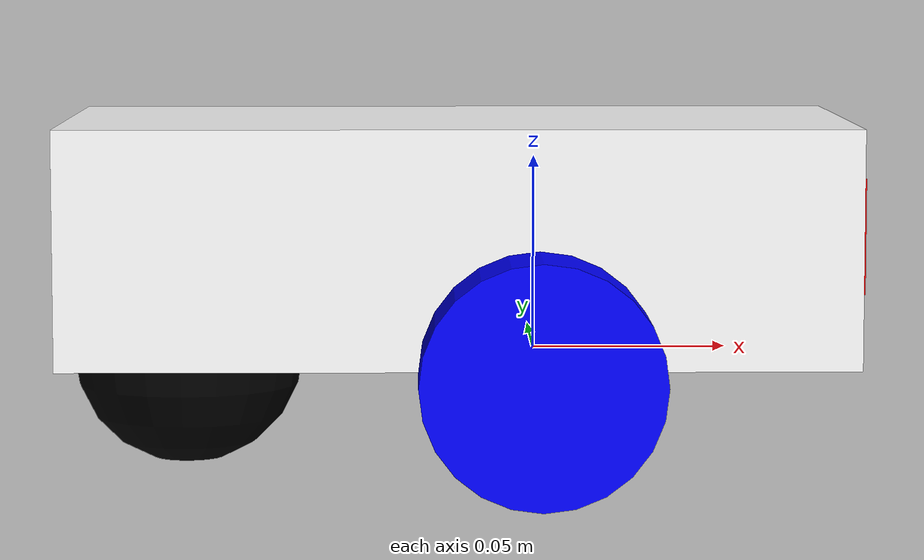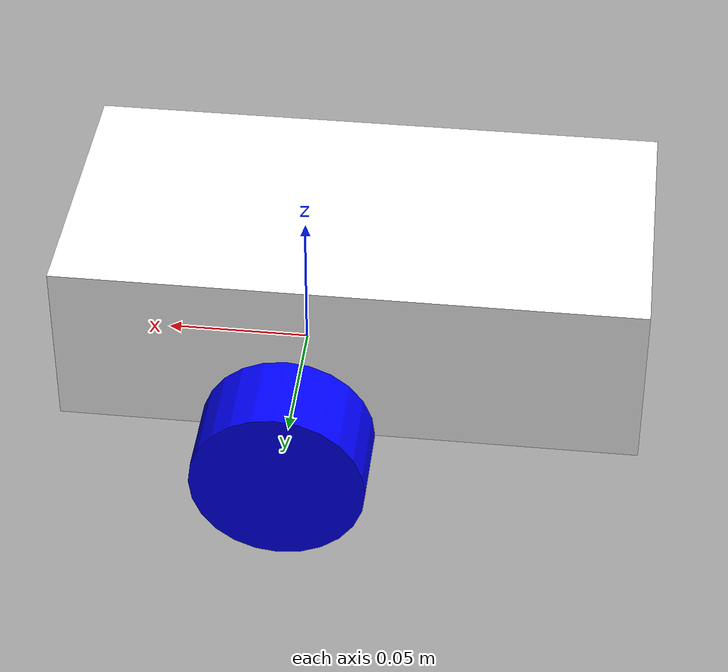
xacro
<?xml version="1.0"?>
<robot xmlns:xacro="http://www.ros.org/wiki/xacro" name="urdf_tutorial">

    <!-- COLOR -->
    <material name="white">
        <color rgba="1 1 1 1" />
    </material>

    <material name="blue">
        <color rgba="0 0 1 1" />
    </material>

    <material name="black">
        <color rgba="0 0 0 1" />
    </material>

    <material name="red">
        <color rgba="1 0 0 1" />
    </material>

    <!-- BASE LINK -->
    <link name="base_link">
        <origin xyz="0 0 2" />
        <inertial>
            <mass value="1.0" />
            <inertia ixx="0.01" ixy="0.0" ixz="0.0" iyy="0.01" iyz="0.0" izz="0.01" />
        </inertial>
    </link>

    <!-- BODY LINK -->
    <joint name="body_joint" type="fixed">
        <parent link="base_link" />
        <child link="body" />
        <origin xyz="-0.12 0 0" />
    </joint>

    <link name="body">
        <inertial>
            <mass value="1.0" />
            <inertia ixx="0.01" ixy="0.0" ixz="0.0" iyy="0.01" iyz="0.0" izz="0.01" />
        </inertial>
        <visual>
            <origin xyz="0.1 0 0.03" />
            <geometry>
                <box size="0.2 0.1 0.06" />
            </geometry>
            <material name="white" />
        </visual>
        <collision>
            <origin xyz="0.1 0 0.03" />
            <geometry>
                <box size="0.2 0.1 0.06" />
            </geometry>
        </collision>
    </link>

    <!-- LEFT WHEEL LINK -->
    <joint name="left_wheel_joint" type="continuous">
        <parent link="base_link" />
        <child link="left_wheel" />
        <origin xyz="0 0.065 0.0" rpy="-${pi/2} 0 0" />
        <axis xyz="0 0 1" />
    </joint>

    <link name="left_wheel">
        <inertial>
            <mass value="1.0" />
            <inertia ixx="0.01" ixy="0.0" ixz="0.0" iyy="0.01" iyz="0.0" izz="0.01" />
        </inertial>
        <visual>
            <geometry>
                <cylinder radius="0.03" length="0.03" />
            </geometry>
            <material name="blue" />
        </visual>
        <collision>
            <geometry>
                <cylinder radius="0.03" length="0.03" />
            </geometry>
        </collision>
    </link>

    <!-- RIGHT WHEEL LINK -->
    <joint name="right_wheel_joint" type="continuous">
        <parent link="base_link" />
        <child link="right_wheel" />
        <origin xyz="0 -0.065 0.0" rpy="${pi/2} 0 0" />
        <axis xyz="0 0 -1" />
    </joint>

    <link name="right_wheel">
        <inertial>
            <mass value="1.0" />
            <inertia ixx="0.01" ixy="0.0" ixz="0.0" iyy="0.01" iyz="0.0" izz="0.01" />
        </inertial>
        <visual>
            <geometry>
                <cylinder radius="0.03" length="0.03" />
            </geometry>
            <material name="blue" />
        </visual>
        <collision>
            <geometry>
                <cylinder radius="0.03" length="0.03" />
            </geometry>
        </collision>
    </link>

    <!-- CASTER WHEEL LINK -->
    <joint name="caster_wheel_joint" type="fixed">
        <parent link="body" />
        <child link="caster_wheel" />
        <origin xyz="0.03 0 0" />
    </joint>

    <link name="caster_wheel">
        <visual>
            <geometry>
                <sphere radius="0.03" />
            </geometry>
            <material name="black" />
        </visual>
        <collision>
            <geometry>
                <sphere radius="0.03" />
            </geometry>
        </collision>
    </link>

    <!-- CAMERA -->
    <joint name="camera_joint" type="fixed">
        <parent link="body" />
        <child link="camera_link" />
        <origin xyz="0.20 0 0.03" rpy="0 0 0" />
    </joint>

    <link name="camera_link">
        <visual>
            <geometry>
                <box size="0.01 0.03 0.03" />
            </geometry>
            <material name="red" />
        </visual>
        <collision>
            <geometry>
                <box size="0.01 0.03 0.03" />
            </geometry>
        </collision>
    </link>

    <joint name="camera_optical_joint" type="fixed">
        <parent link="camera_link" />
        <child link="camera_link_optical" />
        <origin xyz="0 0 0" rpy="${-pi/2} 0 ${-pi/2}" />
    </joint>

    <link name="camera_link_optical">
    </link>

    <!-- GAZEBO -->
    <xacro:include filename="gazebo.xacro" />
</robot>
